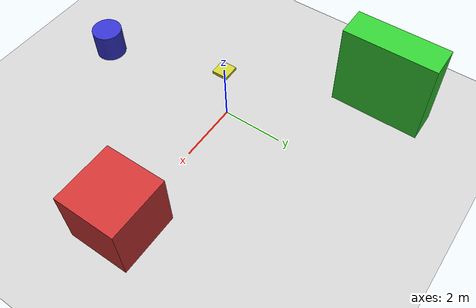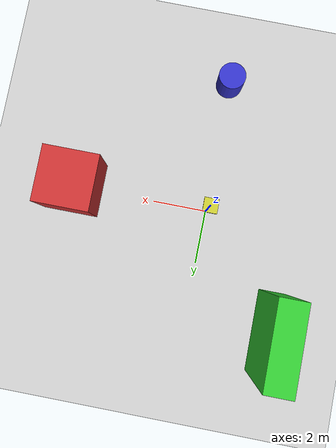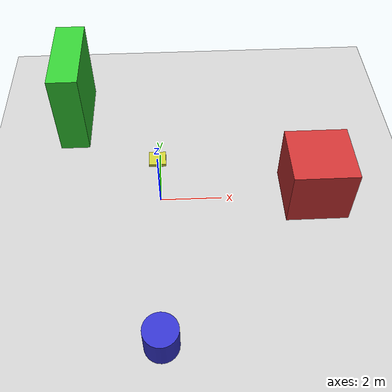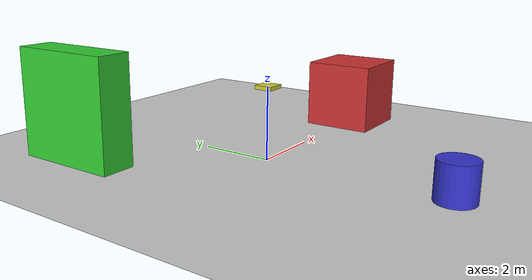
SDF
<?xml version="1.0"?>
<sdf version="1.6">
  <world name="drone_mapping_world">
    <physics name="default_physics" default="0" type="ode">
      <gravity>0 0 -9.8066</gravity>
      <ode>
        <solver>
          <type>quick</type>
          <iters>10</iters>
          <sor>1.3</sor>
        </solver>
        <constraints>
          <cfm>0</cfm>
          <erp>0.2</erp>
          <contact_max_correcting_vel>100</contact_max_correcting_vel>
          <contact_surface_layer>0.001</contact_surface_layer>
        </constraints>
      </ode>
      <max_step_size>0.004</max_step_size>
      <real_time_factor>1</real_time_factor>
      <real_time_update_rate>250</real_time_update_rate>
    </physics>

    <scene>
      <ambient>0.4 0.4 0.4 1</ambient>
      <background>0.7 0.7 0.7 1</background>
      <shadows>true</shadows>
    </scene>

    <light name="sun" type="directional">
      <cast_shadows>true</cast_shadows>
      <pose>0 0 10 0 0 0</pose>
      <diffuse>0.8 0.8 0.8 1</diffuse>
      <specular>0.2 0.2 0.2 1</specular>
      <attenuation>
        <range>1000</range>
        <constant>0.9</constant>
        <linear>0.01</linear>
        <quadratic>0.001</quadratic>
      </attenuation>
      <direction>-0.5 0.1 -0.9</direction>
    </light>

    <model name="ground_plane">
      <static>true</static>
      <link name="link">
        <collision name="collision">
          <geometry>
            <plane>
              <normal>0 0 1</normal>
              <size>100 100</size>
            </plane>
          </geometry>
        </collision>
        <visual name="visual">
          <geometry>
            <plane>
              <normal>0 0 1</normal>
              <size>100 100</size>
            </plane>
          </geometry>
          <material>
            <ambient>0.8 0.8 0.8 1</ambient>
            <diffuse>0.8 0.8 0.8 1</diffuse>
          </material>
        </visual>
      </link>
    </model>

    <!-- Obstacles for mapping -->
    <model name="box_1">
      <pose>5 0 1 0 0 0</pose>
      <link name="link">
        <collision name="collision">
          <geometry>
            <box>
              <size>2 2 2</size>
            </box>
          </geometry>
        </collision>
        <visual name="visual">
          <geometry>
            <box>
              <size>2 2 2</size>
            </box>
          </geometry>
          <material>
            <ambient>0.8 0.2 0.2 1</ambient>
            <diffuse>0.8 0.2 0.2 1</diffuse>
          </material>
        </visual>
      </link>
    </model>

    <model name="box_2">
      <pose>-3 4 1.5 0 0 0</pose>
      <link name="link">
        <collision name="collision">
          <geometry>
            <box>
              <size>1 3 3</size>
            </box>
          </geometry>
        </collision>
        <visual name="visual">
          <geometry>
            <box>
              <size>1 3 3</size>
            </box>
          </geometry>
          <material>
            <ambient>0.2 0.8 0.2 1</ambient>
            <diffuse>0.2 0.8 0.2 1</diffuse>
          </material>
        </visual>
      </link>
    </model>

    <model name="cylinder_1">
      <pose>0 -5 0.5 0 0 0</pose>
      <link name="link">
        <collision name="collision">
          <geometry>
            <cylinder>
              <radius>0.5</radius>
              <length>1</length>
            </cylinder>
          </geometry>
        </collision>
        <visual name="visual">
          <geometry>
            <cylinder>
              <radius>0.5</radius>
              <length>1</length>
            </cylinder>
          </geometry>
          <material>
            <ambient>0.2 0.2 0.8 1</ambient>
            <diffuse>0.2 0.2 0.8 1</diffuse>
          </material>
        </visual>
      </link>
    </model>

    <!-- Simple quadrotor model -->
    <model name="quadrotor">
      <pose>0 0 2 0 0 0</pose>
      <link name="base_link">
        <inertial>
          <mass>1.0</mass>
          <inertia>
            <ixx>0.01</ixx>
            <ixy>0</ixy>
            <ixz>0</ixz>
            <iyy>0.01</iyy>
            <iyz>0</iyz>
            <izz>0.02</izz>
          </inertia>
        </inertial>
        <collision name="collision">
          <geometry>
            <box>
              <size>0.5 0.5 0.1</size>
            </box>
          </geometry>
        </collision>
        <visual name="visual">
          <geometry>
            <box>
              <size>0.5 0.5 0.1</size>
            </box>
          </geometry>
          <material>
            <ambient>0.8 0.8 0.2 1</ambient>
            <diffuse>0.8 0.8 0.2 1</diffuse>
          </material>
        </visual>
      </link>

      <!-- Depth camera -->
      <link name="camera_link">
        <pose>0.2 0 0 0 0 0</pose>
        <sensor name="camera" type="depth">
          <camera>
            <horizontal_fov>1.047</horizontal_fov>
            <image>
              <width>640</width>
              <height>480</height>
            </image>
            <clip>
              <near>0.1</near>
              <far>10.0</far>
            </clip>
          </camera>
          <always_on>true</always_on>
          <update_rate>30</update_rate>
          <visualize>true</visualize>
        </sensor>
      </link>

      <joint name="camera_joint" type="fixed">
        <parent>base_link</parent>
        <child>camera_link</child>
      </joint>
    </model>

    <plugin name="gazebo_ros_state" filename="libgazebo_ros_state.so">
      <ros>
        <namespace>/drone</namespace>
      </ros>
      <update_rate>30.0</update_rate>
    </plugin>
  </world>
</sdf>
